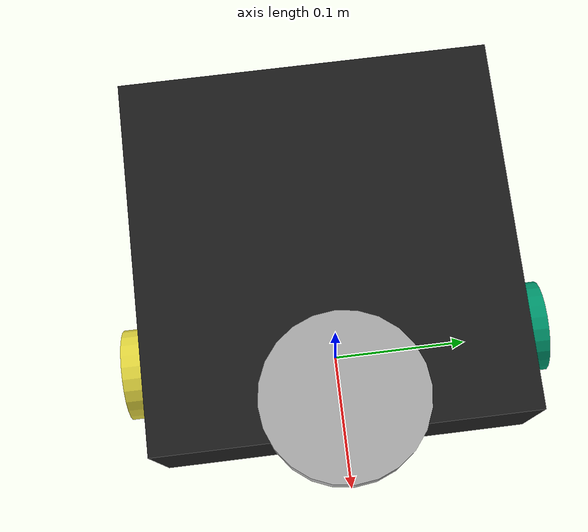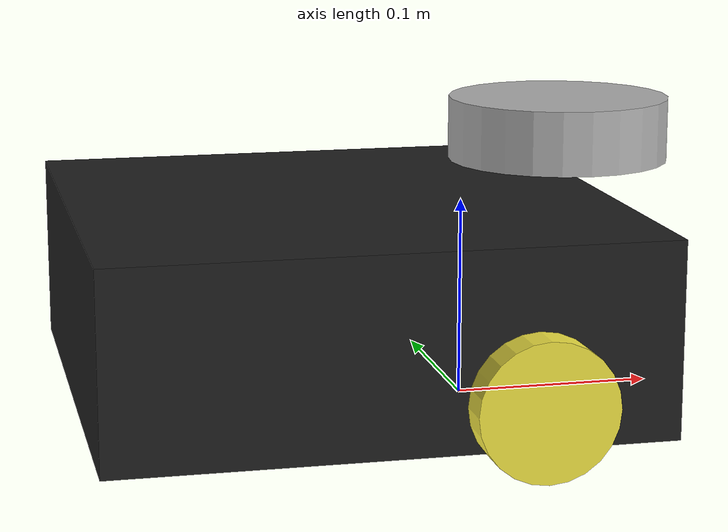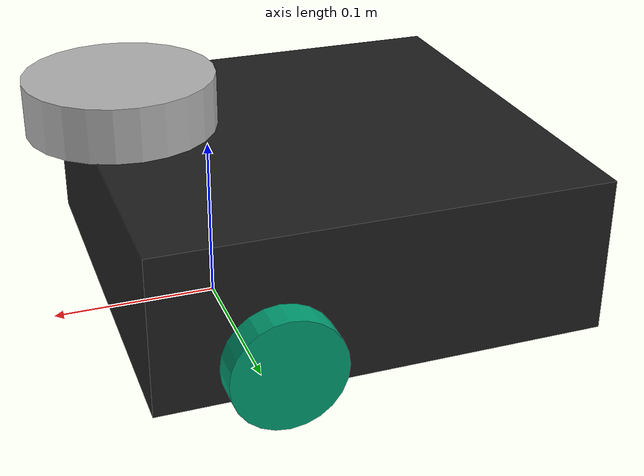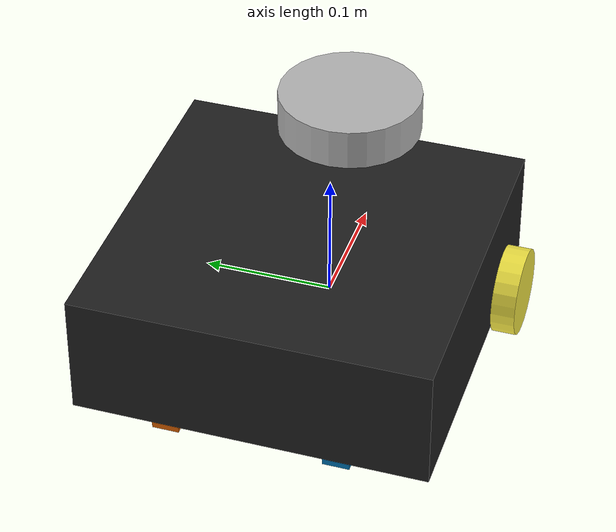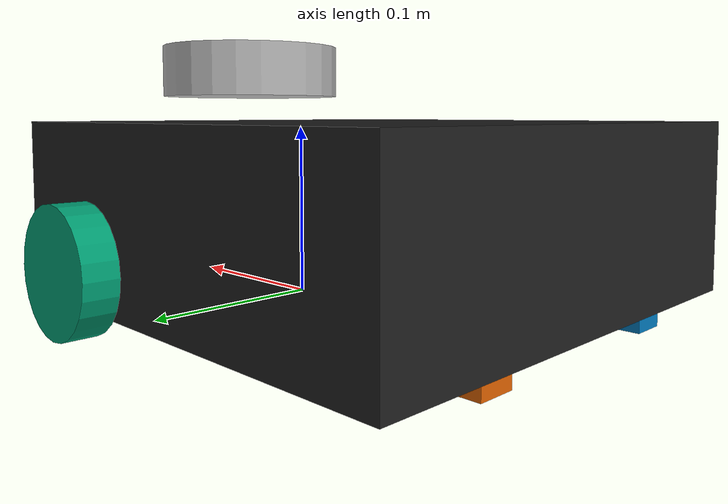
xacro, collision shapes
<?xml version="1.0" ?>
<robot name="turtlebot3_waffle" xmlns:xacro="http://ros.org/wiki/xacro">
  <xacro:include filename="$(find turtlebot3_description)/urdf/common_properties.xacro"/>
  <xacro:include filename="$(find turtlebot3_description)/urdf/turtlebot3_waffle.gazebo.xacro"/>

  <xacro:property name="r200_cam_rgb_px" value="0.005"/>
  <xacro:property name="r200_cam_rgb_py" value="0.018"/>
  <xacro:property name="r200_cam_rgb_pz" value="0.013"/>
  <xacro:property name="r200_cam_depth_offset" value="0.01"/>

  <link name="base_footprint"/>

  <joint name="base_joint" type="fixed">
    <parent link="base_footprint"/>
    <child link="base_link" />
    <origin xyz="0 0 0.010" rpy="0 0 0"/>
  </joint>

  <link name="base_link">
    <visual>
      <origin xyz="-0.064 0 0.0" rpy="0 0 0"/>
      <geometry>
        <mesh filename="package://turtlebot3_description/meshes/bases/waffle_base.stl" scale="0.001 0.001 0.001"/>
      </geometry>
      <material name="light_black"/>
    </visual>

    <collision>
      <origin xyz="-0.064 0 0.047" rpy="0 0 0"/>
      <geometry>
        <box size="0.266 0.266 0.094"/>
      </geometry>
    </collision>

    <inertial>
      <origin xyz="0 0 0" rpy="0 0 0"/>
      <mass value="1.3729096e+00"/>
      <inertia ixx="8.7002718e-03" ixy="-4.7576583e-05" ixz="1.1160499e-04"
               iyy="8.6195418e-03" iyz="-3.5422299e-06"
               izz="1.4612727e-02" />
    </inertial>
  </link>

  <joint name="wheel_left_joint" type="continuous">
    <parent link="base_link"/>
    <child link="wheel_left_link"/>
    <origin xyz="0.0 0.144 0.023" rpy="-1.57 0 0"/>
    <axis xyz="0 0 1"/>
  </joint>

  <link name="wheel_left_link">
    <visual>
      <origin xyz="0 0 0" rpy="1.57 0 0"/>
      <geometry>
        <mesh filename="package://turtlebot3_description/meshes/wheels/left_tire.stl" scale="0.001 0.001 0.001"/>
      </geometry>
      <material name="dark"/>
    </visual>

    <collision>
      <origin xyz="0 0 0" rpy="0 0 0"/>
      <geometry>
        <cylinder length="0.018" radius="0.033"/>
      </geometry>
    </collision>

    <inertial>
      <origin xyz="0 0 0" />
      <mass value="2.8498940e-02" />
      <inertia ixx="1.1175580e-05" ixy="-4.2369783e-11" ixz="-5.9381719e-09"
               iyy="1.1192413e-05" iyz="-1.4400107e-11"
               izz="2.0712558e-05" />
      </inertial>
  </link>

  <joint name="wheel_right_joint" type="continuous">
    <parent link="base_link"/>
    <child link="wheel_right_link"/>
    <origin xyz="0.0 -0.144 0.023" rpy="-1.57 0 0"/>
    <axis xyz="0 0 1"/>
  </joint>

  <link name="wheel_right_link">
    <visual>
      <origin xyz="0 0 0" rpy="1.57 0 0"/>
      <geometry>
        <mesh filename="package://turtlebot3_description/meshes/wheels/right_tire.stl" scale="0.001 0.001 0.001"/>
      </geometry>
      <material name="dark"/>
    </visual>

    <collision>
      <origin xyz="0 0 0" rpy="0 0 0"/>
      <geometry>
        <cylinder length="0.018" radius="0.033"/>
      </geometry>
    </collision>

    <inertial>
      <origin xyz="0 0 0" />
      <mass value="2.8498940e-02" />
      <inertia ixx="1.1175580e-05" ixy="-4.2369783e-11" ixz="-5.9381719e-09"
               iyy="1.1192413e-05" iyz="-1.4400107e-11"
               izz="2.0712558e-05" />
      </inertial>
  </link>

  <joint name="caster_back_right_joint" type="fixed">
    <parent link="base_link"/>
    <child link="caster_back_right_link"/>
    <origin xyz="-0.177 -0.064 -0.004" rpy="-1.57 0 0"/>
  </joint>

  <link name="caster_back_right_link">
    <collision>
      <origin xyz="0 0.001 0" rpy="0 0 0"/>
      <geometry>
        <box size="0.030 0.009 0.020"/>
      </geometry>
    </collision>

    <inertial>
      <origin xyz="0 0 0" />
      <mass value="0.005" />
      <inertia ixx="0.001" ixy="0.0" ixz="0.0"
               iyy="0.001" iyz="0.0"
               izz="0.001" />
    </inertial>
  </link>

  <joint name="caster_back_left_joint" type="fixed">
    <parent link="base_link"/>
    <child link="caster_back_left_link"/>
    <origin xyz="-0.177 0.064 -0.004" rpy="-1.57 0 0"/>
  </joint>

  <link name="caster_back_left_link">
    <collision>
      <origin xyz="0 0.001 0" rpy="0 0 0"/>
      <geometry>
        <box size="0.030 0.009 0.020"/>
      </geometry>
    </collision>

    <inertial>
      <origin xyz="0 0 0" />
      <mass value="0.005" />
      <inertia ixx="0.001" ixy="0.0" ixz="0.0"
               iyy="0.001" iyz="0.0"
               izz="0.001" />
    </inertial>
  </link>

  <joint name="imu_joint" type="fixed">
    <parent link="base_link"/>
    <child link="imu_link"/>
    <origin xyz="0.0 0 0.068" rpy="0 0 0"/>
  </joint>

  <link name="imu_link"/>

  <joint name="scan_joint" type="fixed">
    <parent link="base_link"/>
    <child link="laser"/>
    <origin xyz="0.05 0 0.125" rpy="0 0 0"/>
  </joint>

  <link name="laser">
    <visual>
      <origin xyz="0 0 0.02" rpy="0 0 0"/>
      <geometry>
        <mesh filename="package://delibot_slam/meshes/urg_optical_axis_center_origin.dae"/>
      </geometry>
      <material name="dark"/>
    </visual>

    <collision>
      <origin xyz="0 0 0" rpy="0 0 0"/>
      <geometry>
        <cylinder length="0.0315" radius="0.055"/>
      </geometry>
    </collision>

    <inertial>
      <mass value="0.270" />
      <origin xyz="0 0 0" />
      <inertia ixx="2.632e-4" ixy="0.0" ixz="0.0"
               iyy="2.632e-4" iyz="0.0"
               izz="1.62e-4" />
    </inertial>
  </link>

    <!-- This inertial field needs doesn't contain reliable data!! -->

</robot>
